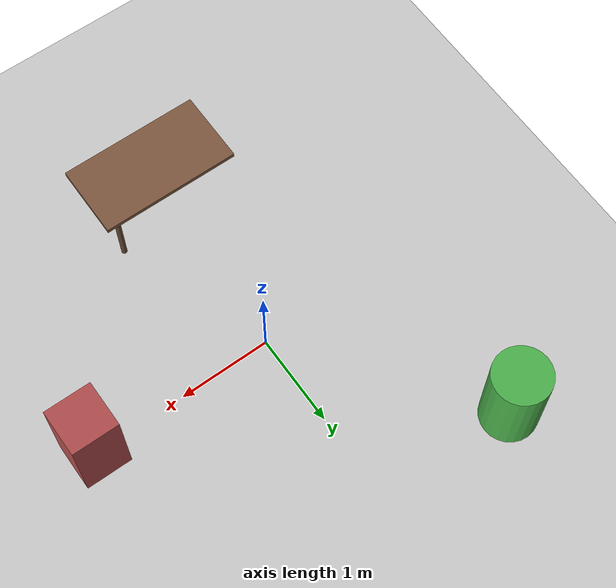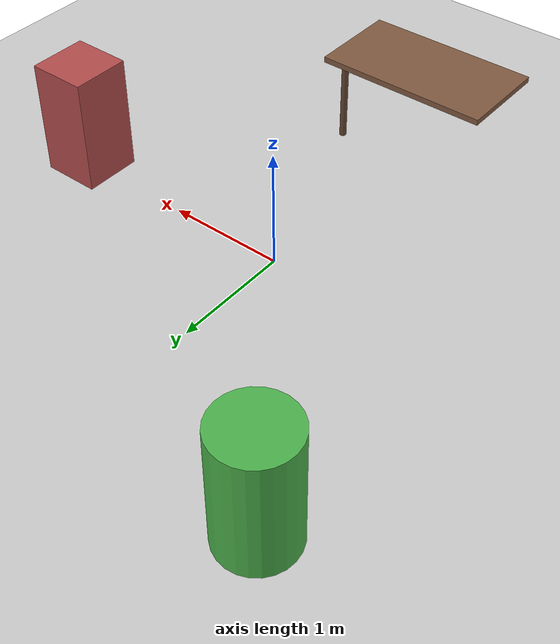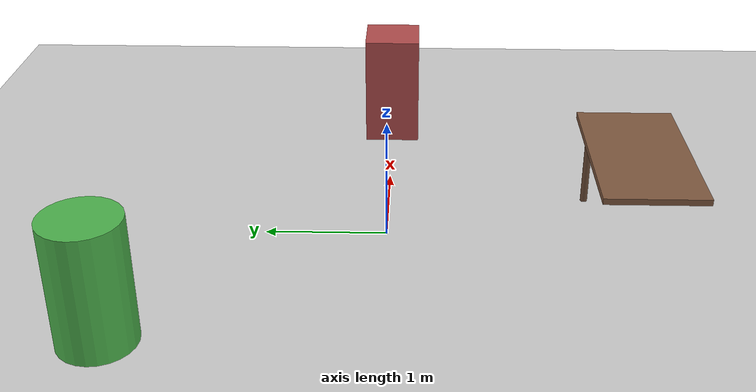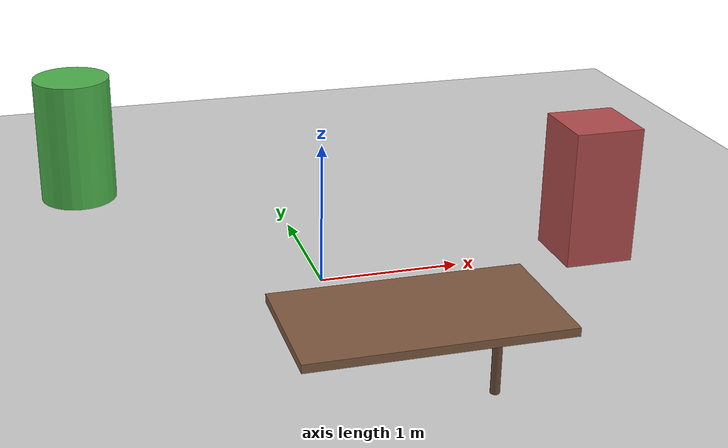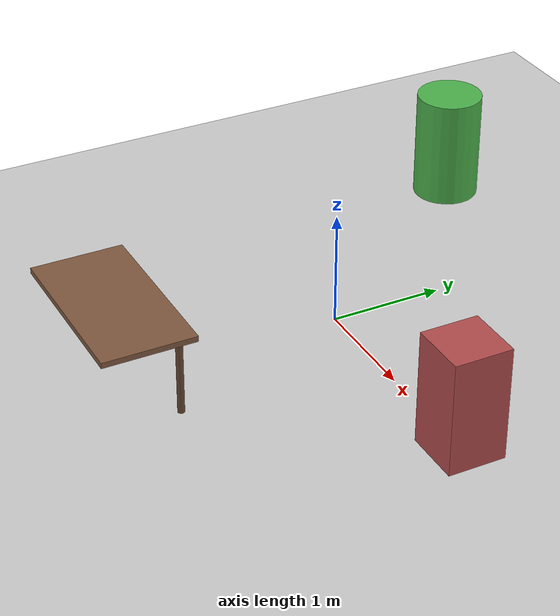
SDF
<?xml version="1.0"?>
<!-- Gazebo world SDF for humanoid robot with obstacles -->
<!-- Launch with: ros2 launch gazebo_ros gazebo.launch.py world:=chapter_08_example_01.world -->
<!-- Expected output: Gazebo opens with humanoid robot in environment with obstacles -->
<sdf version="1.7">
  <world name="humanoid_test_world">

    <!-- Physics configuration -->
    <physics name="default_physics" default="true" type="ode">
      <max_step_size>0.001</max_step_size>
      <real_time_factor>1.0</real_time_factor>
      <real_time_update_rate>1000.0</real_time_update_rate>

      <ode>
        <solver>
          <type>quick</type>
          <iters>50</iters>
          <sor>1.3</sor>
        </solver>
        <constraints>
          <cfm>0.0</cfm>
          <erp>0.2</erp>
          <contact_max_correcting_vel>100.0</contact_max_correcting_vel>
          <contact_surface_layer>0.001</contact_surface_layer>
        </constraints>
      </ode>
    </physics>

    <!-- Scene rendering configuration -->
    <scene>
      <ambient>0.4 0.4 0.4 1.0</ambient>
      <background>0.7 0.7 0.7 1.0</background>
      <shadows>true</shadows>
      <grid>true</grid>
    </scene>

    <!-- Lighting -->
    <light type="directional" name="sun">
      <cast_shadows>true</cast_shadows>
      <pose>0 0 10 0 0 0</pose>
      <diffuse>0.8 0.8 0.8 1</diffuse>
      <specular>0.2 0.2 0.2 1</specular>
      <attenuation>
        <range>1000</range>
        <constant>0.9</constant>
        <linear>0.01</linear>
        <quadratic>0.001</quadratic>
      </attenuation>
      <direction>-0.5 0.1 -0.9</direction>
    </light>

    <!-- Ground plane -->
    <model name="ground_plane">
      <static>true</static>
      <link name="link">
        <collision name="collision">
          <geometry>
            <plane>
              <normal>0 0 1</normal>
              <size>100 100</size>
            </plane>
          </geometry>
          <surface>
            <friction>
              <ode>
                <mu>1.0</mu>
                <mu2>1.0</mu2>
              </ode>
            </friction>
          </surface>
        </collision>
        <visual name="visual">
          <geometry>
            <plane>
              <normal>0 0 1</normal>
              <size>100 100</size>
            </plane>
          </geometry>
          <material>
            <ambient>0.8 0.8 0.8 1</ambient>
            <diffuse>0.8 0.8 0.8 1</diffuse>
          </material>
        </visual>
      </link>
    </model>

    <!-- Obstacle 1: Box -->
    <model name="box_obstacle">
      <static>true</static>
      <pose>2.0 0.0 0.5 0 0 0</pose>
      <link name="link">
        <collision name="collision">
          <geometry>
            <box>
              <size>0.5 0.5 1.0</size>
            </box>
          </geometry>
        </collision>
        <visual name="visual">
          <geometry>
            <box>
              <size>0.5 0.5 1.0</size>
            </box>
          </geometry>
          <material>
            <ambient>0.7 0.3 0.3 1</ambient>
            <diffuse>0.7 0.3 0.3 1</diffuse>
          </material>
        </visual>
      </link>
    </model>

    <!-- Obstacle 2: Cylinder -->
    <model name="cylinder_obstacle">
      <static>true</static>
      <pose>-1.5 2.0 0.5 0 0 0</pose>
      <link name="link">
        <collision name="collision">
          <geometry>
            <cylinder>
              <radius>0.3</radius>
              <length>1.0</length>
            </cylinder>
          </geometry>
        </collision>
        <visual name="visual">
          <geometry>
            <cylinder>
              <radius>0.3</radius>
              <length>1.0</length>
            </cylinder>
          </geometry>
          <material>
            <ambient>0.3 0.7 0.3 1</ambient>
            <diffuse>0.3 0.7 0.3 1</diffuse>
          </material>
        </visual>
      </link>
    </model>

    <!-- Obstacle 3: Complex shape (table) -->
    <model name="table">
      <static>true</static>
      <pose>0.0 -2.0 0.0 0 0 0</pose>

      <!-- Table top -->
      <link name="table_top">
        <pose>0 0 0.75 0 0 0</pose>
        <collision name="collision">
          <geometry>
            <box>
              <size>1.5 0.8 0.05</size>
            </box>
          </geometry>
        </collision>
        <visual name="visual">
          <geometry>
            <box>
              <size>1.5 0.8 0.05</size>
            </box>
          </geometry>
          <material>
            <ambient>0.5 0.35 0.25 1</ambient>
            <diffuse>0.5 0.35 0.25 1</diffuse>
          </material>
        </visual>
      </link>

      <!-- Table legs (4 legs) -->
      <link name="leg_1">
        <pose>0.6 0.3 0.375 0 0 0</pose>
        <collision name="collision">
          <geometry>
            <cylinder>
              <radius>0.03</radius>
              <length>0.75</length>
            </cylinder>
          </geometry>
        </collision>
        <visual name="visual">
          <geometry>
            <cylinder>
              <radius>0.03</radius>
              <length>0.75</length>
            </cylinder>
          </geometry>
          <material>
            <ambient>0.4 0.28 0.2 1</ambient>
            <diffuse>0.4 0.28 0.2 1</diffuse>
          </material>
        </visual>
      </link>

      <!-- Additional legs at (-0.6, 0.3), (0.6, -0.3), (-0.6, -0.3) -->
      <!-- [Similar structure for leg_2, leg_3, leg_4] -->

    </model>

    <!-- GUI camera -->
    <gui>
      <camera name="user_camera">
        <pose>-5.0 0.0 2.0 0 0.3 0</pose>
      </camera>
    </gui>

  </world>
</sdf>
